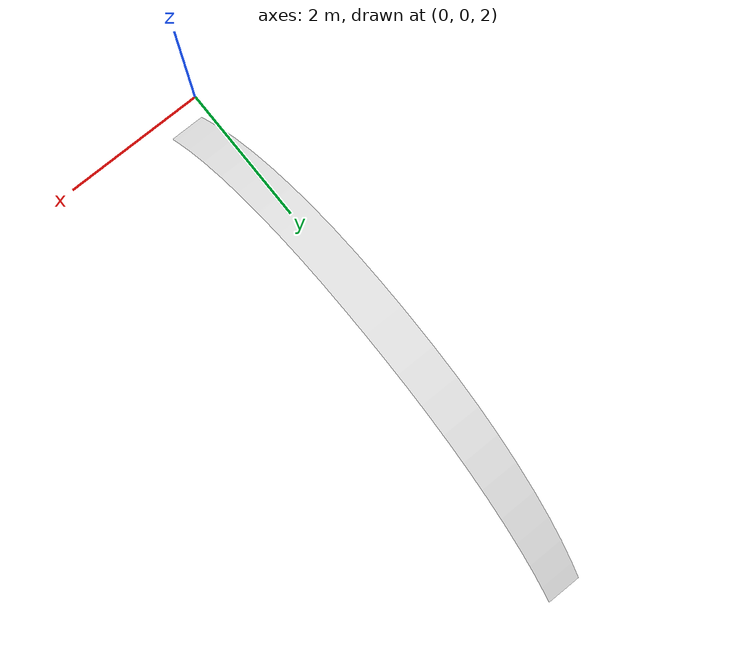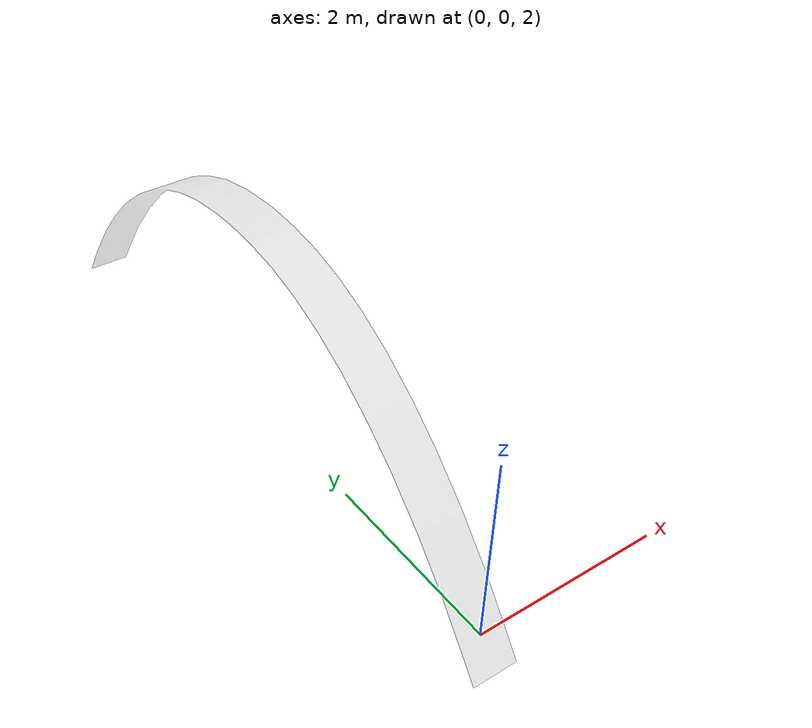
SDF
<?xml version="1.0" ?>
<sdf version="1.5">

<model name="canopyhalfm">
<static>1</static>
<pose>0.0 0.0 0.0 1.5707 0.0 1.5707</pose>

  <link name="link">

    <collision name="collision">
      <geometry>
        <mesh>
          <uri>model://canopyhalfm/canopyhalfm.stl</uri>
        </mesh>
      </geometry>
    </collision>

    <visual name="visual">
      <geometry>
        <mesh>
          <uri>model://canopyhalfm/canopyhalfm.stl</uri>
        </mesh>
      </geometry>
    <transparency>0.65</transparency>
    </visual>

  </link>
</model>
</sdf>
